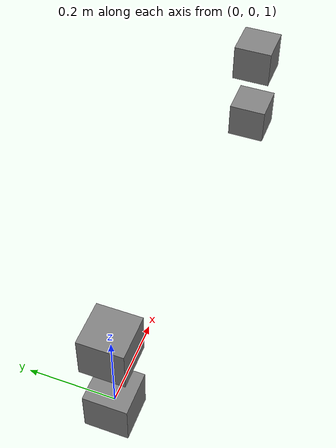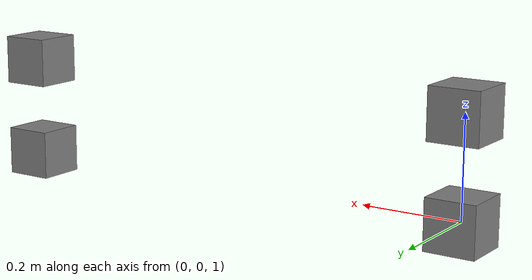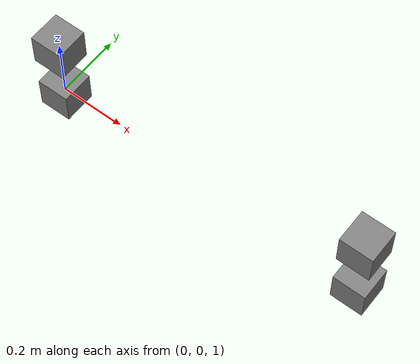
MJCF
<mujoco model="stacked_joints">
  <worldbody>
    <body name="stacked_root" pos="0 0 1">
      <freejoint/>
      <geom type="box" size="0.05 0.05 0.05"/>
      <body name="stacked_child" pos="0 0 0.2">
        <joint name="hinge_x" type="hinge" axis="1 0 0" range="-45 45"/>
        <joint name="hinge_y" type="hinge" axis="0 1 0" range="-30 30"/>
        <geom type="box" size="0.05 0.05 0.05"/>
      </body>
    </body>

    <body name="single_root" pos="1 0 1">
      <freejoint/>
      <geom type="box" size="0.05 0.05 0.05"/>
      <body name="single_child" pos="0 0 0.2">
        <joint name="single_hinge" type="hinge" axis="0 0 1" range="-45 45"/>
        <geom type="box" size="0.05 0.05 0.05"/>
      </body>
    </body>
  </worldbody>
</mujoco>
